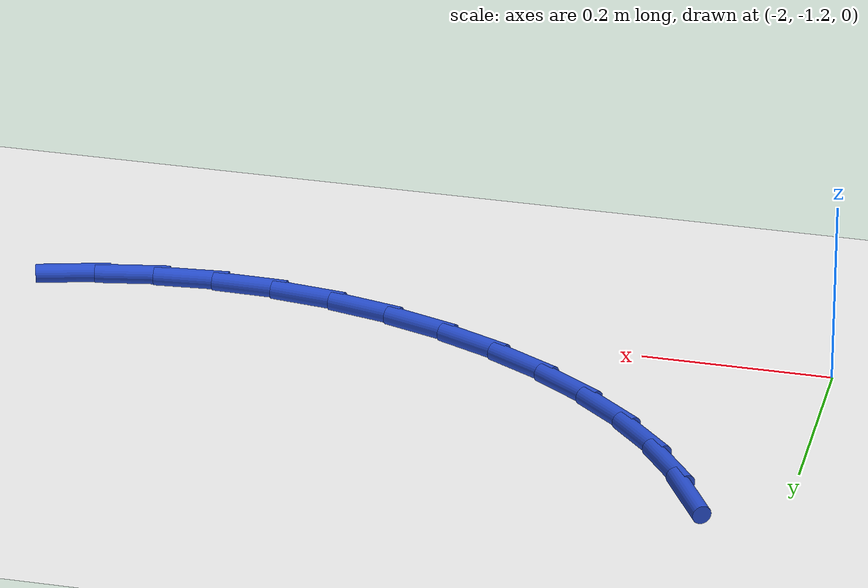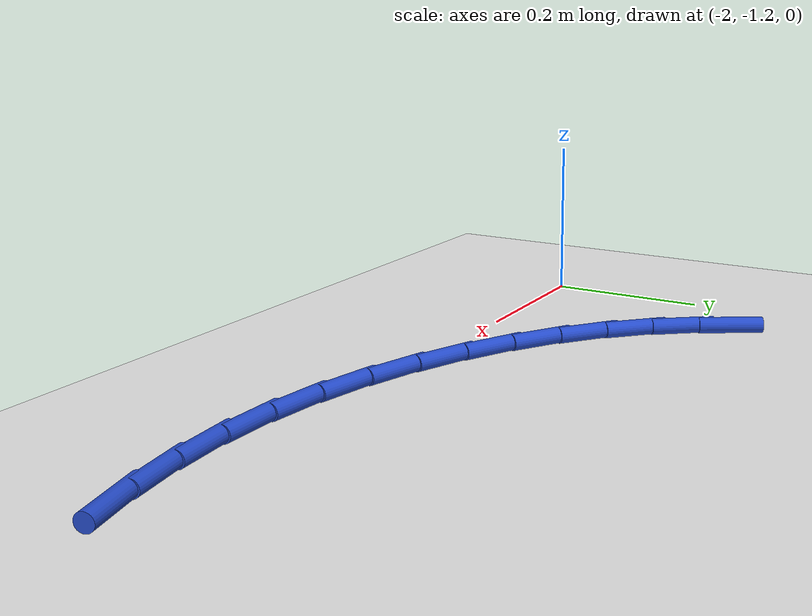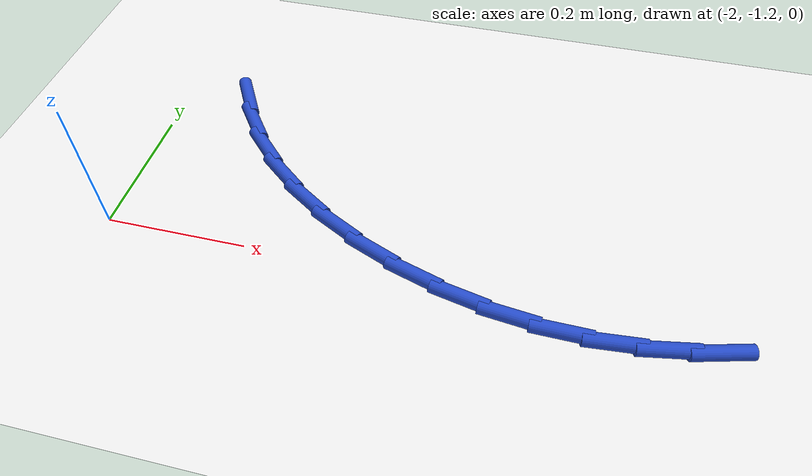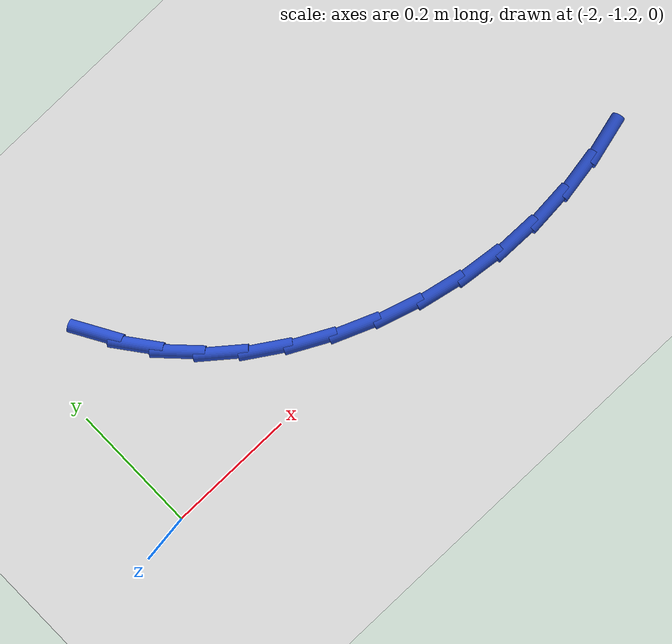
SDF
<sdf version="1.6">
 <world name="default">
  <model name="ground_plane">
   <static>1</static>
   <link name="link">
    <collision name="collision">
     <geometry><plane><normal>0 0 1</normal><size>100 100</size></plane></geometry>
     <surface><friction><ode><mu>100</mu><mu2>50</mu2></ode></friction></surface>
    </collision>
    <visual name="visual">
     <cast_shadows>0</cast_shadows>
     <geometry><plane><normal>0 0 1</normal><size>100 100</size></plane></geometry>
     <material>
      <script><uri>file://media/materials/scripts/gazebo.material</uri><name>Gazebo/WhiteGlow</name></script>
     </material>
    </visual>
   </link>
  </model>
  <model name="line">
   <link name="link_69">
    <pose>-1.9012058197944501 -0.9214979799467939 0.01 0 1.57 -1.0434723314413137</pose>
    <collision name="collision">
     <geometry><cylinder><radius>0.01</radius><length>0.08</length></cylinder></geometry>
    </collision>
    <visual name="visual">
     <material>
      <script><name>Gazebo/Blue</name><uri>file://media/materials/scripts/gazebo.material</uri></script>
     </material>
     <geometry><cylinder><radius>0.01</radius><length>0.08</length></cylinder></geometry>
    </visual>
   </link>
   <link name="link_70">
    <pose>-1.8708504336399119 -0.9736256268404625 0.01 0 1.57 -0.9207553994429825</pose>
    <collision name="collision">
     <geometry><cylinder><radius>0.01</radius><length>0.08</length></cylinder></geometry>
    </collision>
    <visual name="visual">
     <material>
      <script><name>Gazebo/Blue</name><uri>file://media/materials/scripts/gazebo.material</uri></script>
     </material>
     <geometry><cylinder><radius>0.01</radius><length>0.08</length></cylinder></geometry>
    </visual>
   </link>
   <link name="link_71">
    <pose>-1.8339662282414302 -1.0221403056285001 0.01 0 1.57 -0.7936583259456349</pose>
    <collision name="collision">
     <geometry><cylinder><radius>0.01</radius><length>0.08</length></cylinder></geometry>
    </collision>
    <visual name="visual">
     <material>
      <script><name>Gazebo/Blue</name><uri>file://media/materials/scripts/gazebo.material</uri></script>
     </material>
     <geometry><cylinder><radius>0.01</radius><length>0.08</length></cylinder></geometry>
    </visual>
   </link>
   <link name="link_72">
    <pose>-1.7901562117194616 -1.0666801227355929 0.01 0 1.57 -0.6784799787142737</pose>
    <collision name="collision">
     <geometry><cylinder><radius>0.01</radius><length>0.08</length></cylinder></geometry>
    </collision>
    <visual name="visual">
     <material>
      <script><name>Gazebo/Blue</name><uri>file://media/materials/scripts/gazebo.material</uri></script>
     </material>
     <geometry><cylinder><radius>0.01</radius><length>0.08</length></cylinder></geometry>
    </visual>
   </link>
   <link name="link_73">
    <pose>-1.7402462051796308 -1.1069150967625503 0.01 0 1.57 -0.5745661736180427</pose>
    <collision name="collision">
     <geometry><cylinder><radius>0.01</radius><length>0.08</length></cylinder></geometry>
    </collision>
    <visual name="visual">
     <material>
      <script><name>Gazebo/Blue</name><uri>file://media/materials/scripts/gazebo.material</uri></script>
     </material>
     <geometry><cylinder><radius>0.01</radius><length>0.08</length></cylinder></geometry>
    </visual>
   </link>
   <link name="link_74">
    <pose>-1.6852516611272677 -1.1425201951868307 0.01 0 1.57 -0.47868068735199754</pose>
    <collision name="collision">
     <geometry><cylinder><radius>0.01</radius><length>0.08</length></cylinder></geometry>
    </collision>
    <visual name="visual">
     <material>
      <script><name>Gazebo/Blue</name><uri>file://media/materials/scripts/gazebo.material</uri></script>
     </material>
     <geometry><cylinder><radius>0.01</radius><length>0.08</length></cylinder></geometry>
    </visual>
   </link>
   <link name="link_75">
    <pose>-1.6261880320677065 -1.173170385485892 0.01 0 1.57 -0.3877482405380572</pose>
    <collision name="collision">
     <geometry><cylinder><radius>0.01</radius><length>0.08</length></cylinder></geometry>
    </collision>
    <visual name="visual">
     <material>
      <script><name>Gazebo/Blue</name><uri>file://media/materials/scripts/gazebo.material</uri></script>
     </material>
     <geometry><cylinder><radius>0.01</radius><length>0.08</length></cylinder></geometry>
    </visual>
   </link>
   <link name="link_76">
    <pose>-1.564070770506277 -1.1985406351371928 0.01 0 1.57 -0.2988568710288709</pose>
    <collision name="collision">
     <geometry><cylinder><radius>0.01</radius><length>0.08</length></cylinder></geometry>
    </collision>
    <visual name="visual">
     <material>
      <script><name>Gazebo/Blue</name><uri>file://media/materials/scripts/gazebo.material</uri></script>
     </material>
     <geometry><cylinder><radius>0.01</radius><length>0.08</length></cylinder></geometry>
    </visual>
   </link>
   <link name="link_77">
    <pose>-1.499915328948313 -1.2183059116181902 0.01 0 1.57 -0.20916386416230462</pose>
    <collision name="collision">
     <geometry><cylinder><radius>0.01</radius><length>0.08</length></cylinder></geometry>
    </collision>
    <visual name="visual">
     <material>
      <script><name>Gazebo/Blue</name><uri>file://media/materials/scripts/gazebo.material</uri></script>
     </material>
     <geometry><cylinder><radius>0.01</radius><length>0.08</length></cylinder></geometry>
    </visual>
   </link>
   <link name="link_78">
    <pose>-1.434737159899144 -1.2321411824063424 0.01 0 1.57 -0.11576723653601223</pose>
    <collision name="collision">
     <geometry><cylinder><radius>0.01</radius><length>0.08</length></cylinder></geometry>
    </collision>
    <visual name="visual">
     <material>
      <script><name>Gazebo/Blue</name><uri>file://media/materials/scripts/gazebo.material</uri></script>
     </material>
     <geometry><cylinder><radius>0.01</radius><length>0.08</length></cylinder></geometry>
    </visual>
   </link>
   <link name="link_79">
    <pose>-1.3695517158641037 -1.2397214149791074 0.01 0 1.57 -0.01669268450730408</pose>
    <collision name="collision">
     <geometry><cylinder><radius>0.01</radius><length>0.08</length></cylinder></geometry>
    </collision>
    <visual name="visual">
     <material>
      <script><name>Gazebo/Blue</name><uri>file://media/materials/scripts/gazebo.material</uri></script>
     </material>
     <geometry><cylinder><radius>0.01</radius><length>0.08</length></cylinder></geometry>
    </visual>
   </link>
   <link name="link_80">
    <pose>-1.3052829543051254 -1.240794332795989 0.01 0 1.57 0.08130517889396657</pose>
    <collision name="collision">
     <geometry><cylinder><radius>0.01</radius><length>0.08</length></cylinder></geometry>
    </collision>
    <visual name="visual">
     <material>
      <script><name>Gazebo/Blue</name><uri>file://media/materials/scripts/gazebo.material</uri></script>
     </material>
     <geometry><cylinder><radius>0.01</radius><length>0.08</length></cylinder></geometry>
    </visual>
   </link>
   <link name="link_81">
    <pose>-1.2421707369280606 -1.2356516457085343 0.01 0 1.57 0.1727109179711222</pose>
    <collision name="collision">
     <geometry><cylinder><radius>0.01</radius><length>0.08</length></cylinder></geometry>
    </collision>
    <visual name="visual">
     <material>
      <script><name>Gazebo/Blue</name><uri>file://media/materials/scripts/gazebo.material</uri></script>
     </material>
     <geometry><cylinder><radius>0.01</radius><length>0.08</length></cylinder></geometry>
    </visual>
   </link>
   <link name="link_82">
    <pose>-1.1801451967884307 -1.2248313568240283 0.01 0 1.57 0.25584143305636464</pose>
    <collision name="collision">
     <geometry><cylinder><radius>0.01</radius><length>0.08</length></cylinder></geometry>
    </collision>
    <visual name="visual">
     <material>
      <script><name>Gazebo/Blue</name><uri>file://media/materials/scripts/gazebo.material</uri></script>
     </material>
     <geometry><cylinder><radius>0.01</radius><length>0.08</length></cylinder></geometry>
    </visual>
   </link>
  </model>
 </world>
</sdf>
